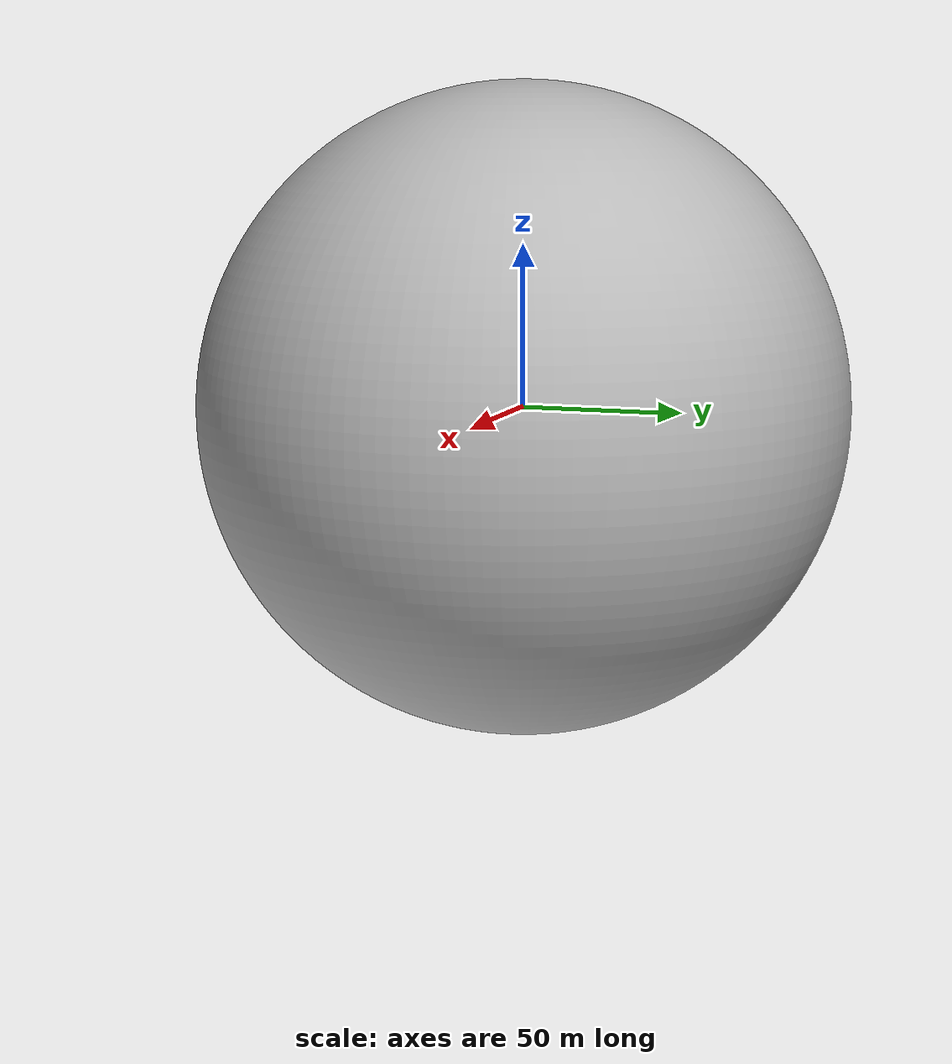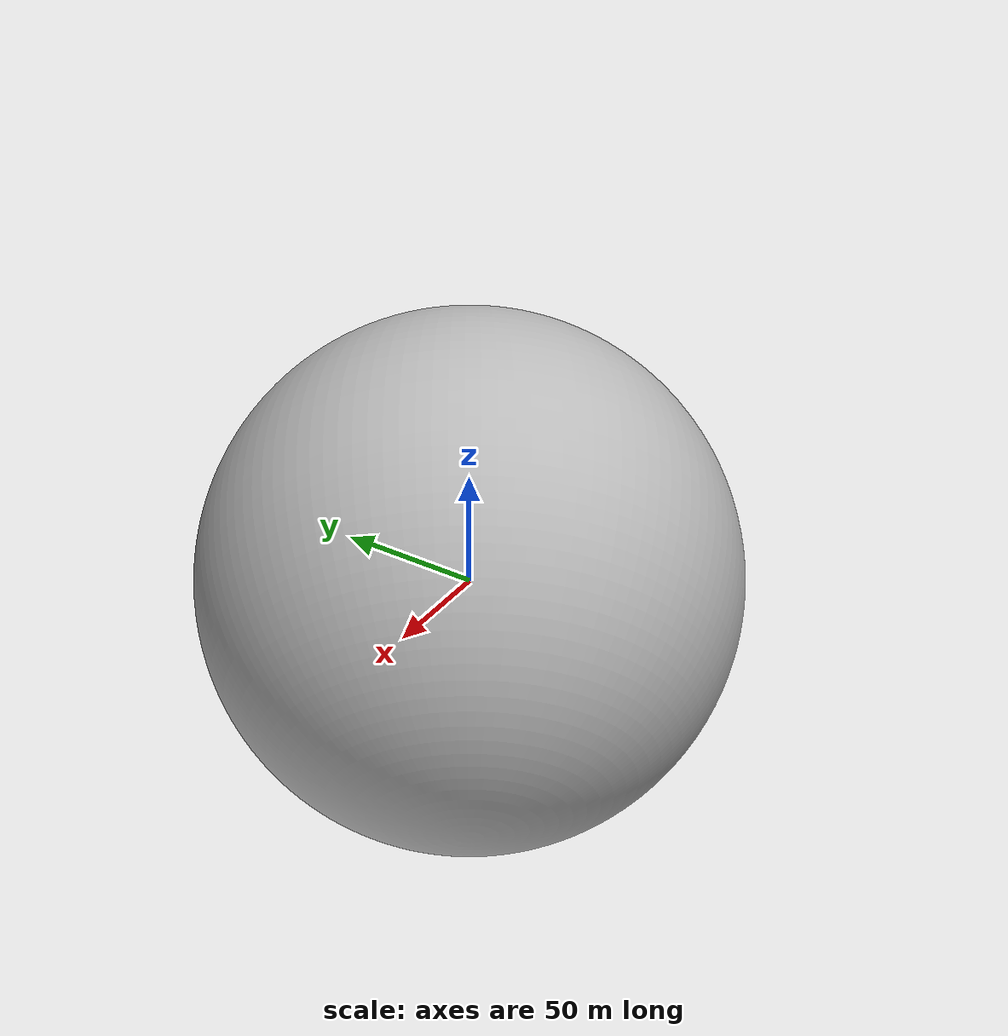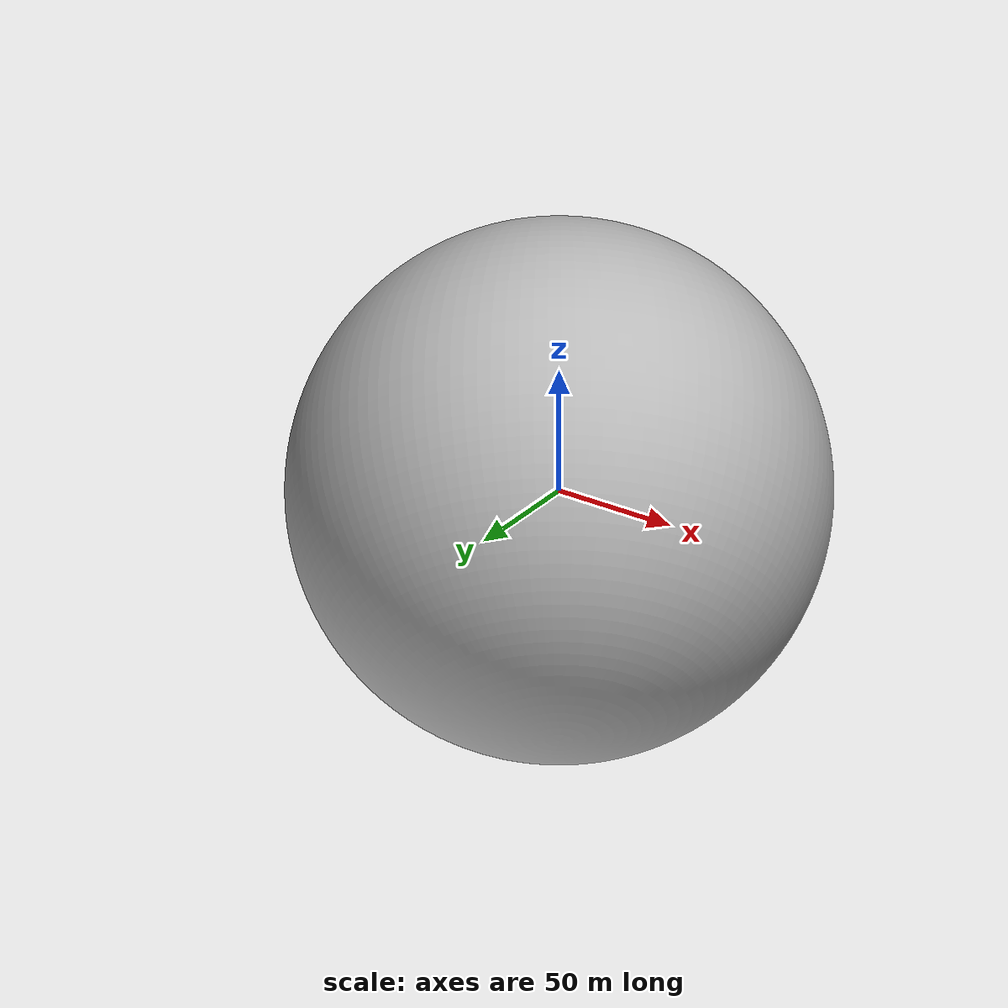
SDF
<?xml version="1.0"?>
<sdf version="1.5">
  <model name="Floor">
    <static>true</static>
    <link name="main">
      <visual name="visual">
        <pose>0 0 0 0 0 0</pose>
		<geometry>
			<mesh>
				<uri>model://Gazebo_Arena/gazebo_floor.dae</uri>
			</mesh>
		</geometry>
      </visual>
      <collision name="collision">
        <pose>0 0 0 0 0 0</pose>
		<geometry>
			<mesh>
				<uri>model://Gazebo_Arena/gazebo_floor.dae</uri>
			</mesh>
		</geometry>
        <surface>
          <friction>
            <ode>
              <mu>0.1</mu>
              <mu2>0.1</mu2>
            </ode>
          </friction>
        </surface>
      </collision>
    </link>
  </model>
  <model name="Columns">
    <static>true</static>
    <link name="main">
      <visual name="visual">
        <pose>0 0 0 0 0 0</pose>
		<geometry>
			<mesh>
				<uri>model://Gazebo_Arena/gazebo_columns.dae</uri>
			</mesh>
		</geometry>
      </visual>
    </link>
  </model>
    <model name="Top">
    <static>true</static>
    <link name="main">
      <visual name="visual">
        <pose>0 0 0 0 0 0</pose>
		<geometry>
			<mesh>
				<uri>model://Gazebo_Arena/gazebo_top.dae</uri>
			</mesh>
		</geometry>
      </visual>
    </link>
  </model>
    <model name="Background">
    <static>true</static>
    <link name="main">
      <visual name="visual">
        <pose>0 0 0 0 0 0</pose>
		<geometry>
			<mesh>
				<uri>model://Gazebo_Arena/background.dae</uri>
			</mesh>
		</geometry>
      </visual>
    </link>
  </model>
</sdf>
